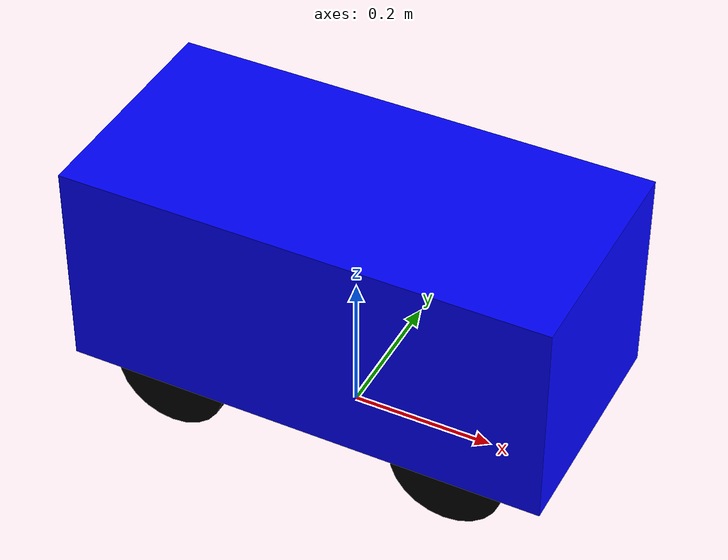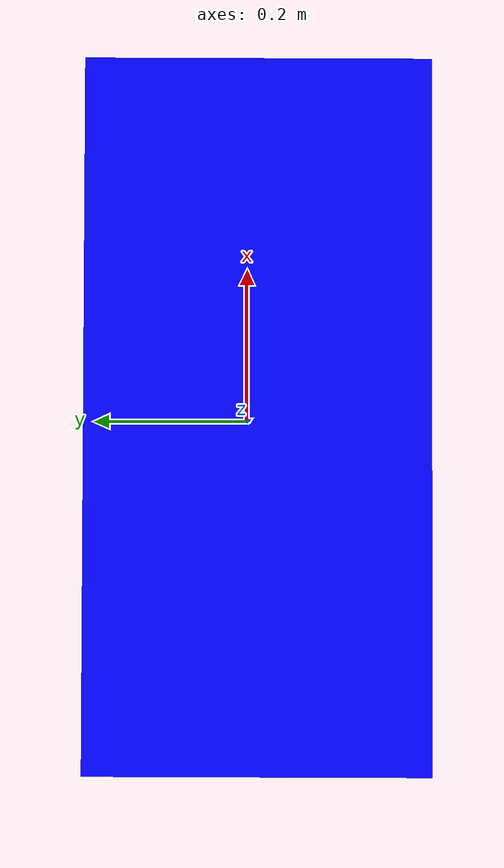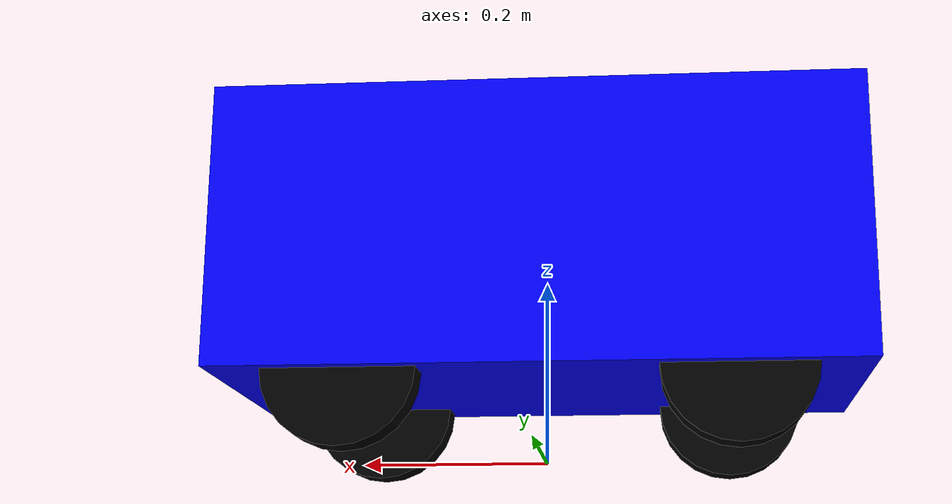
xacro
<?xml version="1.0"?>
<robot xmlns:xacro="http://www.ros.org/wiki/xacro" name="robotcar">

  <!-- Robot Dimensions -->
  <xacro:property name="body_length" value="0.68"/>
  <xacro:property name="body_width" value="0.33"/>
  <xacro:property name="body_height" value="0.30"/>
  <xacro:property name="wheel_radius" value="0.08"/>
  <xacro:property name="wheel_length" value="0.04"/> <!-- Assumed width of wheel -->
  <xacro:property name="wheel_separation_width" value="0.26"/>
  <xacro:property name="wheel_separation_length" value="0.405"/>

  <!-- Base Footprint -->
  <link name="base_footprint"/>

  <joint name="base_joint" type="fixed">
    <parent link="base_footprint"/>
    <child link="base_link"/>
    <origin xyz="0 0 ${wheel_radius}" rpy="0 0 0"/>
  </joint>

  <!-- Base Link -->
  <link name="base_link">
    <visual>
      <geometry>
        <box size="${body_length} ${body_width} ${body_height}"/>
      </geometry>
      <material name="blue">
        <color rgba="0 0 1 1"/>
      </material>
      <origin xyz="0 0 ${body_height/2}" rpy="0 0 0"/>
    </visual>
    <collision>
      <geometry>
        <box size="${body_length} ${body_width} ${body_height}"/>
      </geometry>
      <origin xyz="0 0 ${body_height/2}" rpy="0 0 0"/>
    </collision>
    <inertial>
      <mass value="10.0"/>
      <origin xyz="0 0 ${body_height/2}"/>
      <inertia ixx="0.1" ixy="0.0" ixz="0.0" iyy="0.1" iyz="0.0" izz="0.1"/>
    </inertial>
  </link>

  <!-- IMU Link (Center of body) -->
  <link name="imu_link"/>
  <joint name="imu_joint" type="fixed">
    <parent link="base_link"/>
    <child link="imu_link"/>
    <origin xyz="0 0 ${body_height/2}" rpy="0 0 0"/>
  </joint>

  <!-- Livox Link (Front Top Edge) -->
  <link name="livox_frame"/>
  <joint name="livox_joint" type="fixed">
    <parent link="base_link"/>
    <child link="livox_frame"/>
    <origin xyz="${body_length/2} 0 ${body_height}" rpy="0 0 0"/> <!-- 数据已预处理为水平，此处设为0 -->
  </joint>

  <!-- Wheels Macro -->
  <xacro:macro name="wheel" params="prefix x_offset y_offset">
    <link name="${prefix}_wheel_link">
      <visual>
        <geometry>
          <cylinder radius="${wheel_radius}" length="${wheel_length}"/>
        </geometry>
        <material name="black">
          <color rgba="0 0 0 1"/>
        </material>
        <origin xyz="0 0 0" rpy="${pi/2} 0 0"/>
      </visual>
      <collision>
        <geometry>
          <cylinder radius="${wheel_radius}" length="${wheel_length}"/>
        </geometry>
        <origin xyz="0 0 0" rpy="${pi/2} 0 0"/>
      </collision>
      <inertial>
        <mass value="1.0"/>
        <origin xyz="0 0 0"/>
        <inertia ixx="0.01" ixy="0.0" ixz="0.0" iyy="0.01" iyz="0.0" izz="0.01"/>
      </inertial>
    </link>

    <joint name="${prefix}_wheel_joint" type="continuous">
      <parent link="base_link"/>
      <child link="${prefix}_wheel_link"/>
      <origin xyz="${x_offset} ${y_offset} 0" rpy="0 0 0"/>
      <axis xyz="0 1 0"/>
    </joint>
  </xacro:macro>

  <!-- Instantiate Wheels -->
  <xacro:wheel prefix="front_left" x_offset="${wheel_separation_length/2}" y_offset="${wheel_separation_width/2}"/>
  <xacro:wheel prefix="front_right" x_offset="${wheel_separation_length/2}" y_offset="-${wheel_separation_width/2}"/>
  <xacro:wheel prefix="rear_left" x_offset="-${wheel_separation_length/2}" y_offset="${wheel_separation_width/2}"/>
  <xacro:wheel prefix="rear_right" x_offset="-${wheel_separation_length/2}" y_offset="-${wheel_separation_width/2}"/>

  <!-- ROS2 Control -->
  <ros2_control name="RobotCar" type="system">
    <hardware>
      <plugin>robot_base/RobotCarHardwareInterface</plugin>
      <param name="serial_port_name">/dev/STM32</param>
      <param name="serial_baud_rate">115200</param>
      <param name="wheel_radius">${wheel_radius}</param>
      <param name="wheel_separation">${wheel_separation_width}</param>
    </hardware>

    <joint name="front_left_wheel_joint">
      <command_interface name="velocity"/>
      <state_interface name="position"/>
      <state_interface name="velocity"/>
    </joint>
    <joint name="front_right_wheel_joint">
      <command_interface name="velocity"/>
      <state_interface name="position"/>
      <state_interface name="velocity"/>
    </joint>
    <joint name="rear_left_wheel_joint">
      <command_interface name="velocity"/>
      <state_interface name="position"/>
      <state_interface name="velocity"/>
    </joint>
    <joint name="rear_right_wheel_joint">
      <command_interface name="velocity"/>
      <state_interface name="position"/>
      <state_interface name="velocity"/>
    </joint>
  </ros2_control>

</robot>
